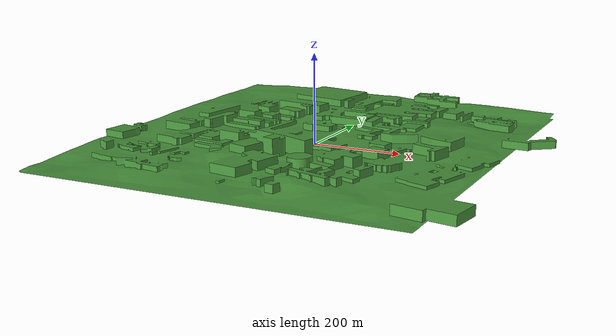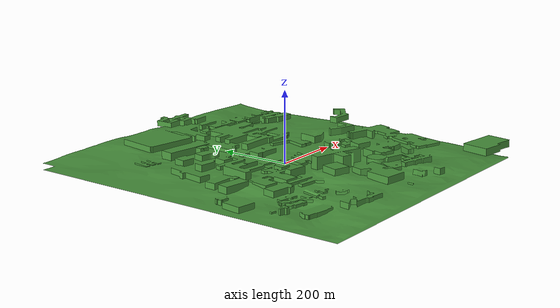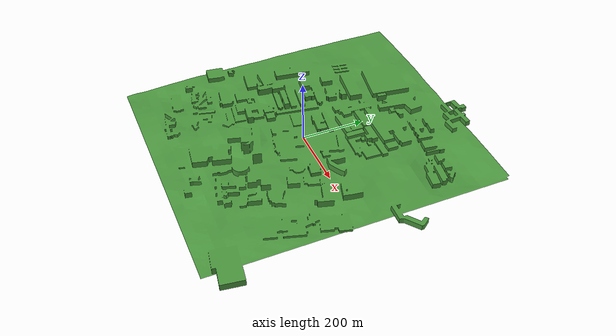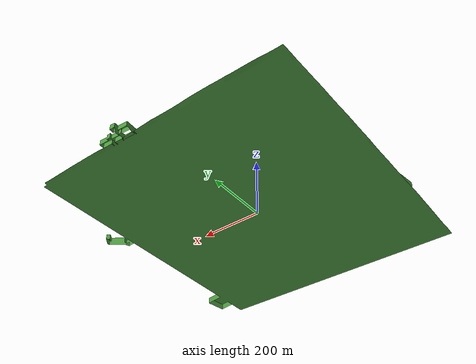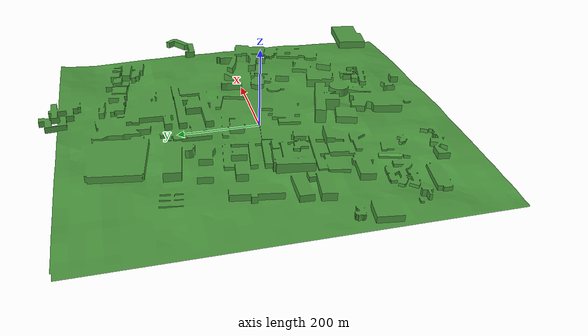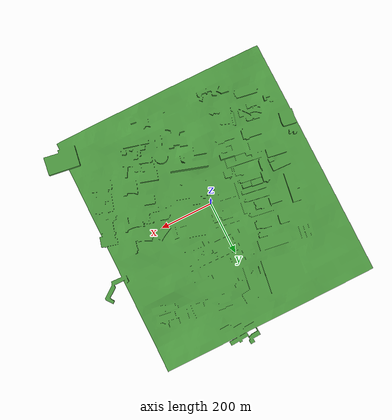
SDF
<?xml version='1.0'?>
<sdf version='1.6'>
  <model name="Campus">
      <link name="campus_hd">

        <collision name="collision">
          <geometry>
            <mesh>
              <uri>model://campus_hd/meshes/campus.dae</uri>
            </mesh>
          </geometry>
        </collision>

        <visual name="visual">
          <geometry>
            <mesh>
              <uri>model://campus_hd/meshes/campus.dae</uri>
            </mesh>
          </geometry>
          <material>
            <script>
              <uri>model://corridor/materials/scripts</uri>
              <uri>model://corridor/materials/textures</uri>
              <name>Gazebo/Grass</name>
            </script>
            <ambient>1 1 1 1</ambient>
          </material>
        </visual>

      </link>
  </model>
</sdf>
